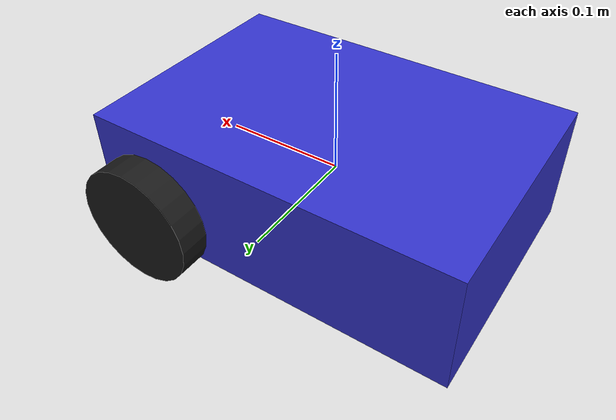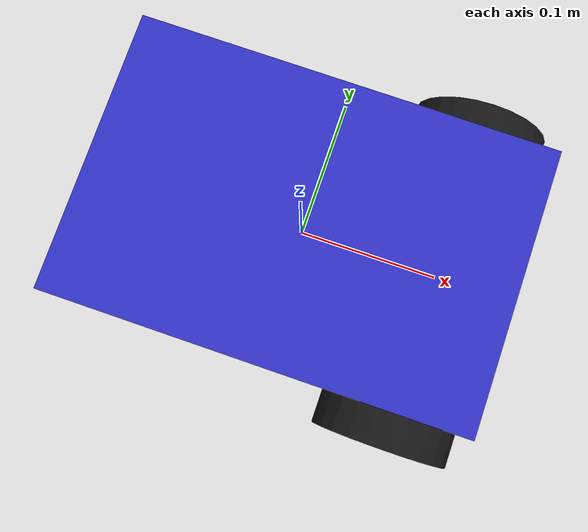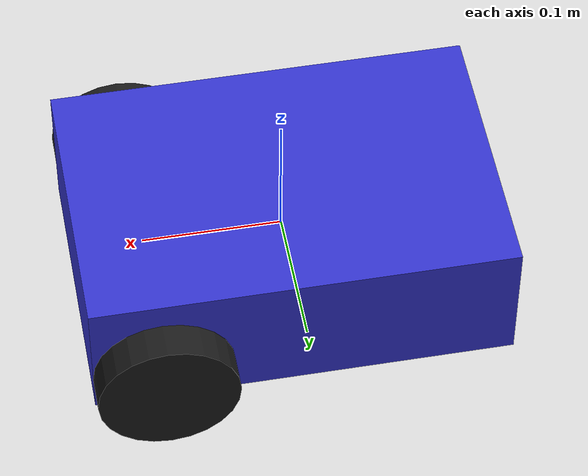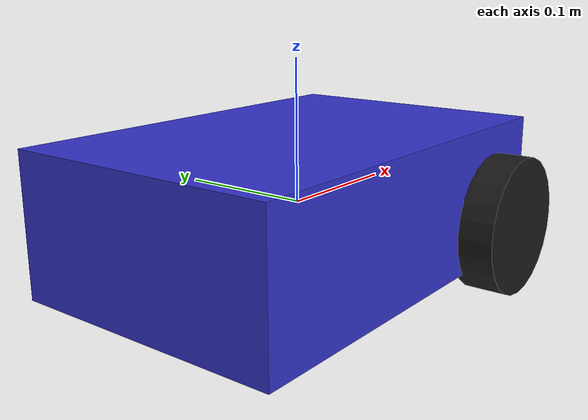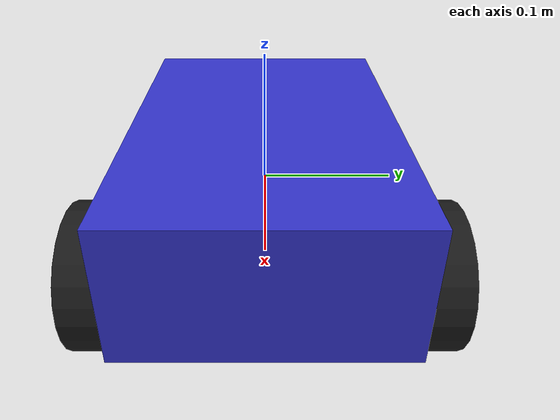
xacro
<?xml version="1.0"?>

<robot xmlns:xacro="http://www.ros.org/wiki/xacro" name="diffdrive_robot">

    <!-- Constants -->
    <xacro:property name="base_length" value="0.3"/>
    <xacro:property name="base_width" value="0.2"/>
    <xacro:property name="base_height" value="0.1"/>
    <xacro:property name="wheel_radius" value="0.05"/>
    <xacro:property name="wheel_width" value="0.03"/>
    <xacro:property name="wheel_separation" value="0.22"/>
    <xacro:property name="wheel_offset_x" value="0.1"/>
    <xacro:property name="wheel_offset_z" value="-0.02"/>

    <!-- Base link -->
    <link name="base_link">
        <visual>
            <geometry>
                <box size="${base_length} ${base_width} ${base_height}"/>
            </geometry>
            <material name="blue"><color rgba="0.2 0.2 0.8 1.0"/></material>
        </visual>
        <collision>
            <geometry>
                <box size="${base_length} ${base_width} ${base_height}"/>
            </geometry>
        </collision>
        <inertial>
            <mass value="2.0"/>
            <inertia ixx="01" ixy="0.0" ixz="0.0" iyy="0.01" iyz="0.0" izz="0.02"/>
        </inertial>
    </link>

    <!-- Wheel macro-->
    <xacro:macro name="wheel" params="prefix reflect">
        <link name="${prefix}_wheel_link">
            <visual>
                <origin xyz="0.0 0.0 0.0" rpy="1.5708 0.0 0.0"/>
                <geometry>
                    <cylinder radius="${wheel_radius}" length="${wheel_width}"/>
                </geometry>
                <material name="black"><color rgba="0.1 0.1 0.1 1.0"/></material>
            </visual>
            <collision>
                <origin xyz="0.0 0.0 0.0" rpy="1.5708 0.0 0.0"/>
                <geometry>
                    <cylinder radius="${wheel_radius}" length="${wheel_width}"/>
                </geometry>
            </collision>
            <inertial>
                <mass value="0.2"/>
                <inertia ixx="0.0005" ixy="0.0" ixz="0.0" iyy="0.0005" iyz="0.0" izz="0.0005"/>
            </inertial>
        </link>

        <joint name="${prefix}_wheel_joint" type="continuous">
            <origin xyz="${wheel_offset_x} ${reflect * wheel_separation/2} ${wheel_offset_z}" rpy="0.0 0.0 0.0"/>
            <parent link="base_link"/>
            <child link="${prefix}_wheel_link"/>
            <axis xyz="0.0 1.0 0.0"/>
        </joint>
    </xacro:macro>

    <xacro:wheel prefix='left' reflect="1"/>
    <xacro:wheel prefix='right' reflect="-1"/>

    <!-- Caster wheel-->
    <link name="caster_link">
        <visual>
            <geometry><sphere radius="0.025"/></geometry>
            <material name="black"/>
        </visual>
        <collision>
            <geometry><sphere radius="0.025"/></geometry>
        </collision>
        <inertial>
            <mass value="0.05"/>
            <inertia ixx="0.00001" ixy="0.0" ixz="0.0" iyy="0.00001" iyz="0.0" izz="0.00001"/>
        </inertial>
    </link>

    <joint name="caster_joint" type="fixed">
        <origin xyz="-0.1 0.0 -0.05" rpy="0.0 0.0 0.0"/>
        <parent link="base_link"/>
        <child link="caster_link"/>
    </joint>

    <ros2_control name="DiffDriveSystem" type="system">
        <hardware>
            <plugin>gazebo_ros2_control/GazeboSystem</plugin>
        </hardware>

        <joint name="left_wheel_joint">
            <command_interface name="velocity"/>
            <state_interface name="velocity"/>
            <state_interface name="position"/>
        </joint>

        <joint name="right_wheel_joint">
            <command_interface name="velocity"/>
            <state_interface name="velocity"/>
            <state_interface name="position"/>
        </joint>
    </ros2_control>

    <gazebo>
        <plugin filename="libgazebo_ros2_control.so" name="gazebo_ros2_control">
        </plugin>
    </gazebo>

</robot>
